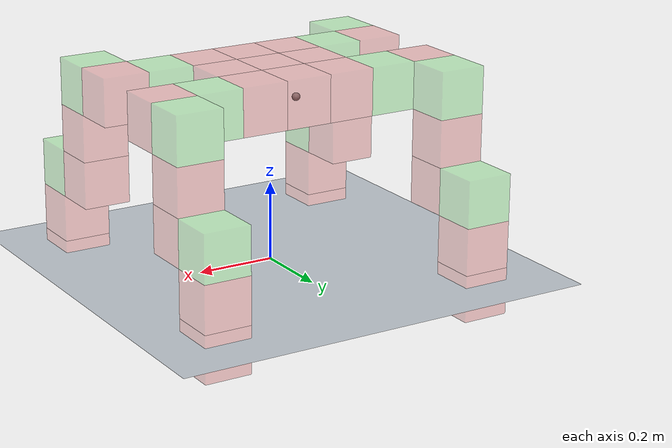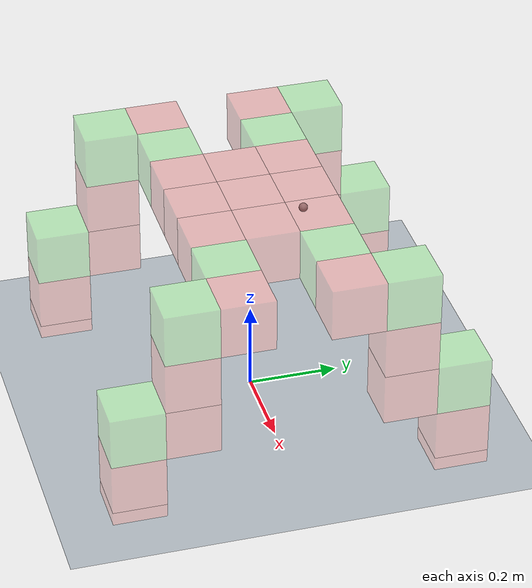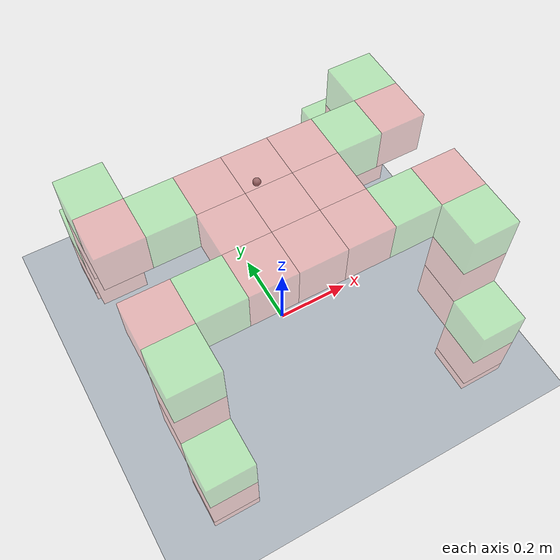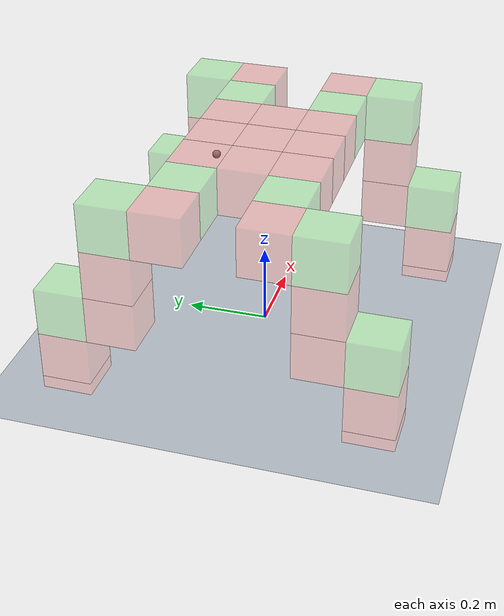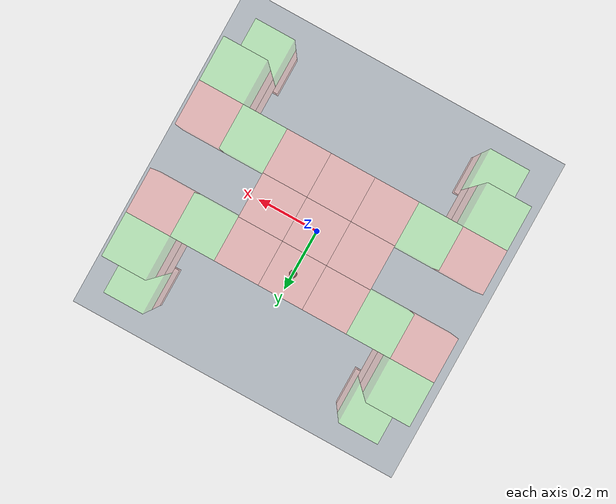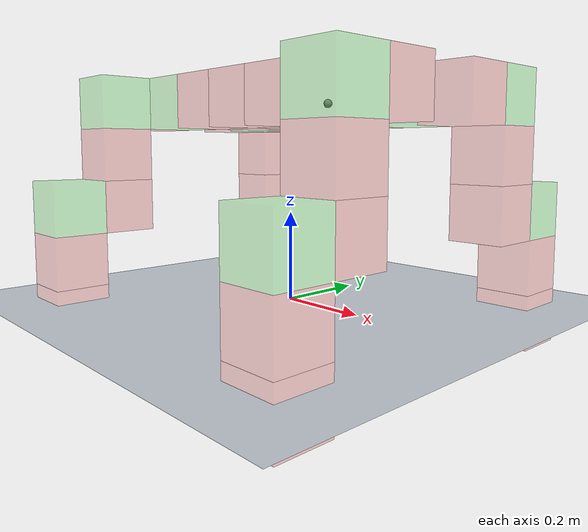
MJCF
<?xml version="1.0" encoding="utf-8"?>
<mujoco model="modular_robot">
    <compiler angle="radian" meshdir="assets" texturedir="assets" autolimits="true"/>
    <option timestep="0.002"/>
    <option iterations="2" ls_iterations="5" gravity="0.0 0.0 -9.81">
        <flag eulerdamp="disable" />
    </option>
    <statistic center="0 0 0.1" extent="0.6"/>
    <visual>
        <headlight diffuse="0.6 0.6 0.6" ambient="0.3 0.3 0.3" specular="0 0 0"/>
        <rgba haze="0.15 0.25 0.35 1"/>
        <global azimuth="140" elevation="-30"/>
    </visual>
    <asset>
        <texture type="skybox" builtin="gradient" rgb1="0.3 0.5 0.7" rgb2="0 0 0" width="512" height="3072"/>
        <texture type="2d" name="groundplane" builtin="checker" mark="edge" rgb1="0.2 0.3 0.4" rgb2="0.1 0.2 0.3" markrgb="0.8 0.8 0.8" width="300" height="300"/>
        <material name="groundplane" texture="groundplane" texuniform="true" texrepeat="5 5" reflectance="0.2"/>
    </asset>
    <default>
        <default class="base_collision">
            <geom type="box" size="0.06 0.06 0.06" pos="0 0 0" mass="0.5" contype="0" conaffinity="0" rgba="0.8 0.2 0.2 0.3"/>
        </default>
        <default class="joint_collision">
            <geom type="box" size="0.06 0.06 0.06" pos="0 0 0" mass="0.5" contype="0" conaffinity="0" rgba="0.2 0.8 0.2 0.3"/>
        </default>
        <default class="end_collision">
            <geom type="box" size="0.06 0.06 0.06" pos="0 0 0" mass="0.5" contype="0" conaffinity="1" rgba="0.8 0.2 0.2 0" friction="0.6" />
        </default>
        <default class="wheel_collision">
            <geom type="box" size="0.06 0.06 0.06" pos="0 0 0" mass="0.5" contype="0" conaffinity="0" rgba="0.2 0.8 0.2 0"/>
        </default>
        <default class="wheel_tire_collision">
            <geom type="cylinder" size="0.085 0.01" pos="0 0 0" mass="0.5" quat="0 0 0.707 0.707" contype="0" conaffinity="1" rgba="0.2 0.8 0.2 0" friction="1.0"/>
        </default>
        <default class="foot_site">
            <site type="sphere" size="0.0175" pos="0 0 0" rgba="0.3 0.6 0.8 0.5" />
        </default>
        <default class="joint+y">
            <joint type="hinge" axis="0 1 0" pos="0 0 0" damping="0.1" armature="0.01"/>
        </default>
        <default class="joint-y">
            <joint type="hinge" axis="0 1 0" pos="0 0 0" damping="0.1" armature="0.01"/>
        </default>
        <default class="joint+x">
            <joint type="hinge" axis="1 0 0" pos="0 0 0" damping="0.1" armature="0.01"/>
        </default>
        <default class="joint-x">
            <joint type="hinge" axis="1 0 0" pos="0 0 0" damping="0.1" armature="0.01"/>
        </default>
        <default class="wheel+y">
            <joint type="hinge" axis="0 1 0" pos="0 0 0"/>
        </default>
        <default class="wheel-y">
            <joint type="hinge" axis="0 1 0" pos="0 0 0"/>
        </default>
        <default class="joint_motor">
            <motor ctrlrange="-100 100"/>
        </default>
        <default class="wheel_velocity">
            <position kv="10" forcelimited="true" forcerange="-500 500"/>
        </default>
    </default>

    <worldbody>
        <light pos="0 0 1.5" dir="0 0 -1" directional="true"/>
        <geom name="floor" size="0 0 0.05" type="plane" material="groundplane"/>
        <body name="module1" pos="0 0 0.45">

            <freejoint/>
            <geom class="base_collision"/>
            <body name="module2" pos="0 0.12 0">
                <site name="imu_site" pos="0 0 0" type="sphere" size="0.01"/>

                <geom class="base_collision"/>
            </body>
            <body name="module3" pos="0 -0.12 0">
                <geom class="base_collision"/>

            </body>
            <body name="module4" pos="0.12 0 0">
                <geom class="base_collision"/>

                <body name="module6" pos="0 0.12 0">
                    <geom class="base_collision"/>

                    <body name="modulex1" pos="0.12 0 0">
                        <geom class="joint_collision"/>

                        <joint class="joint-x" name="modulex1_joint"/>
                        <body name="module17" pos="0.12 0 0">
                            <geom class="base_collision"/>

                            <body name="module21" pos="0 0.12 0" quat="0.707 0 0.707 0">
                                <geom class="joint_collision"/>

                                <joint class="joint-y" name="module21_joint"/>
                                <body name="module25" pos="0.12 0 0">
                                    <geom class="base_collision"/>

                                    <body name="module29" pos="0.12 0 0">
                                        <geom class="base_collision"/>

                                        <body name="module33" pos="0 0.12 0">
                                            <geom class="joint_collision"/>

                                            <joint class="joint-y" name="module33_joint"/>
                                            <body name="module37" pos="0.12 0 0">
                                                <geom class="base_collision"/>

                                                <body name="module41" pos="0.12 0 0">
                                                    <geom class="base_collision"/>
                                                    <geom class="end_collision"/>
                                                    <site name="FL_foot" class="foot_site" pos="0.06 0 -0.06"/>
                                                </body>
                                            </body>
                                        </body>
                                    </body>
                                </body>
                            </body>
                        </body>
                    </body>
                </body>
                <body name="module7" pos="0 -0.12 0">
                    <geom class="base_collision"/>

                    <body name="modulex2" pos="0.12 0 0">
                        <geom class="joint_collision"/>

                        <joint class="joint-x" name="modulex2_joint"/>
                        <body name="module18" pos="0.12 0 0">
                            <geom class="base_collision"/>

                            <body name="module22" pos="0 -0.12 0" quat="0.707 0 0.707 0">
                                <geom class="joint_collision"/>

                                <joint class="joint+y" name="module22_joint"/>
                                <body name="module26" pos="0.12 0 0">
                                    <geom class="base_collision"/>

                                    <body name="module30" pos="0.12 0 0">
                                        <geom class="base_collision"/>

                                        <body name="module34" pos="0 -0.12 0">
                                            <geom class="joint_collision"/>

                                            <joint class="joint+y" name="module34_joint"/>
                                            <body name="module38" pos="0.12 0 0">
                                                <geom class="base_collision"/>

                                                <body name="module42" pos="0.12 0 0">
                                                    <geom class="base_collision"/>
                                                    <geom class="end_collision"/>
                                                    <site name="FR_foot" class="foot_site" pos="0.06 0 -0.06"/>
                                                </body>
                                            </body>
                                        </body>
                                    </body>
                                </body>
                            </body>
                        </body>
                    </body>
                </body>
            </body>
            <body name="module5" pos="-0.12 0 0">
                <geom class="base_collision"/>

                <body name="module9" pos="0 0.12 0">
                    <geom class="base_collision"/>

                    <body name="modulex3" pos="-0.12 0 0">
                        <geom class="joint_collision"/>

                        <joint class="joint+x" name="modulex3_joint"/>
                        <body name="module19" pos="-0.12 0 0">
                            <geom class="base_collision"/>

                            <body name="module23" pos="0 0.12 0" quat="0.707 0 -0.707 0">
                                <geom class="joint_collision"/>

                                <joint class="joint-y" name="module23_joint"/>
                                <body name="module27" pos="-0.12 0 0">
                                    <geom class="base_collision"/>

                                    <body name="module31" pos="-0.12 0 0">
                                        <geom class="base_collision"/>

                                        <body name="module35" pos="0 0.12 0">
                                            <geom class="joint_collision"/>

                                            <joint class="joint-y" name="module35_joint"/>
                                            <body name="module39" pos="-0.12 0 0">
                                                <geom class="base_collision"/>

                                                <body name="module43" pos="-0.12 0 0">
                                                    <geom class="base_collision"/>
                                                    <geom class="end_collision"/>
                                                    <site name="RL_foot" class="foot_site" pos="-0.06 0 0.06"/>
                                                </body>
                                            </body>
                                        </body>
                                    </body>
                                </body>
                            </body>
                        </body>
                    </body>
                </body>
                <body name="module10" pos="0 -0.12 0">
                    <geom class="base_collision"/>

                    <body name="modulex4" pos="-0.12 0 0">
                        <geom class="joint_collision"/>

                        <joint class="joint+x" name="modulex4_joint"/>
                        <body name="module20" pos="-0.12 0 0">
                            <geom class="base_collision"/>

                            <body name="module24" pos="0 -0.12 0" quat="0.707 0 -0.707 0">
                                <geom class="joint_collision"/>

                                <joint class="joint+y" name="module24_joint"/>
                                <body name="module28" pos="-0.12 0 0">
                                    <geom class="base_collision"/>

                                    <body name="module32" pos="-0.12 0 0">
                                        <geom class="base_collision"/>

                                        <body name="module36" pos="0 -0.12 0">
                                            <geom class="joint_collision"/>

                                            <joint class="joint+y" name="module36_joint"/>
                                            <body name="module40" pos="-0.12 0 0">
                                                <geom class="base_collision"/>

                                                <body name="module44" pos="-0.12 0 0">
                                                    <geom class="base_collision"/>
                                                    <geom class="end_collision"/>
                                                    <site name="RR_foot" class="foot_site" pos="-0.06 0 0.06"/>
                                                </body>
                                            </body>
                                        </body>
                                    </body>
                                </body>
                            </body>
                        </body>
                    </body>
                </body>
            </body>
        </body>
    </worldbody>
    <actuator>
        <motor name="modulex1_joint_actuator" joint="modulex1_joint" class="joint_motor"/>
        <motor name="module21_joint_actuator" joint="module21_joint" class="joint_motor"/>
        <motor name="module33_joint_actuator" joint="module33_joint" class="joint_motor"/>
        <motor name="modulex2_joint_actuator" joint="modulex2_joint" class="joint_motor"/>
        <motor name="module22_joint_actuator" joint="module22_joint" class="joint_motor"/>
        <motor name="module34_joint_actuator" joint="module34_joint" class="joint_motor"/>
        <motor name="modulex3_joint_actuator" joint="modulex3_joint" class="joint_motor"/>
        <motor name="module23_joint_actuator" joint="module23_joint" class="joint_motor"/>
        <motor name="module35_joint_actuator" joint="module35_joint" class="joint_motor"/>
        <motor name="modulex4_joint_actuator" joint="modulex4_joint" class="joint_motor"/>
        <motor name="module24_joint_actuator" joint="module24_joint" class="joint_motor"/>
        <motor name="module36_joint_actuator" joint="module36_joint" class="joint_motor"/>

    </actuator>
    <sensor>
        <gyro name="torso_gyro" site="imu_site"/>
    </sensor>
    <keyframe>
        <key name="home" qpos="0 0 0.38 1 0 0 0 0 0.9 -1.8 0 0.9 -1.8 0 0.9 -1.8 0 0.9 -1.8"
            ctrl="0 0.9 -1.8 0 0.9 -1.8 0 0.9 -1.8 0 0.9 -1.8" />
    </keyframe>
</mujoco>
